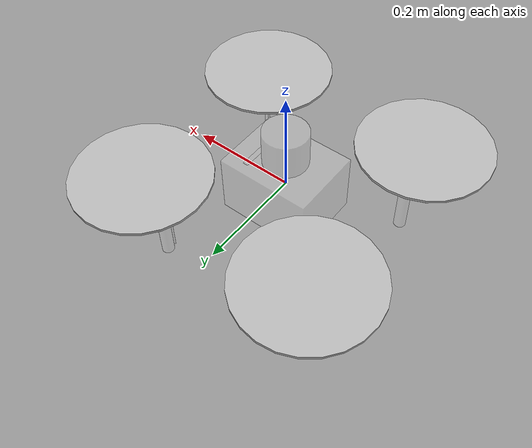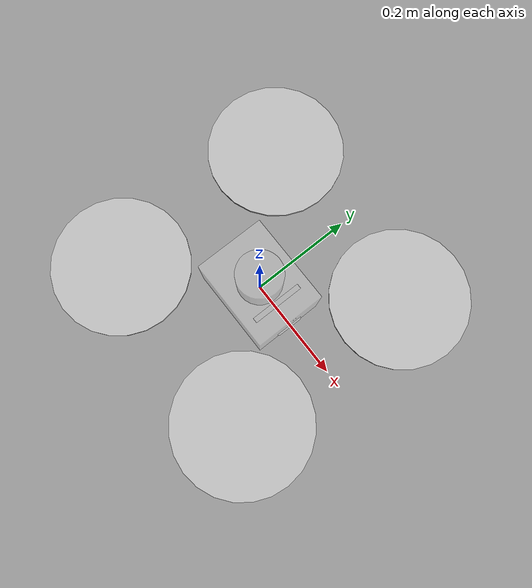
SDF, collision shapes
<?xml version="1.0"?>
<sdf version='1.6'>
  <model name='ctu_cras_norlab_x500_sensor_config_1'>
    <link name='base_link'>

      <sensor name="front_laser" type="gpu_lidar">
        <pose>0 0 0.0944 0 0 0</pose>
        <update_rate>20</update_rate>
        <lidar>
          <scan>
            <horizontal>
              <samples>1024</samples>
              <resolution>1</resolution>
              <min_angle>-3.14159</min_angle>
              <max_angle>3.14159</max_angle>
            </horizontal>
            <vertical>
              <samples>64</samples>
              <resolution>1</resolution>
              <min_angle>-0.785398163397</min_angle>
              <max_angle>0.785398163397</max_angle>
            </vertical>
          </scan>
          <range>
            <min>0.1</min>
            <max>50</max>
            <resolution>0.003</resolution>
          </range>
          <noise>
              <type>gaussian</type>
              <mean>0</mean>
              <stddev>0.03</stddev>
          </noise>
        </lidar>
      </sensor>

      <sensor name="rs_up" type="rgbd_camera">
          <pose>0.082 0 0.06 0 -1.57079632679 0</pose>
          <always_on>1</always_on>
          <update_rate>30</update_rate>
          <camera name="rs_up">
              <horizontal_fov>1.50098</horizontal_fov>
              <lens>
                  <intrinsics>
                      <!-- fx = fy = width / ( 2 * tan (hfov / 2 ) ) -->
                      <fx>343.158</fx>
                      <fy>343.158</fy>
                      <!-- cx = ( width - 1 ) / 2 -->
                      <cx>319.5</cx>
                      <!-- cy = ( height - 1 ) / 2 -->
                      <cy>179.5</cy>
                      <s>0</s>
                  </intrinsics>
              </lens>
              <distortion>
                  <k1>0.0</k1>
                  <k2>0.0</k2>
                  <k3>0.0</k3>
                  <p1>0.0</p1>
                  <p2>0.0</p2>
                  <center>0.5 0.5</center>
              </distortion>
              <image>
                  <width>640</width>
                  <height>360</height>
                  <format>R8G8B8</format>
              </image>
              <clip>
                  <near>0.01</near>
                  <far>300</far>
              </clip>
              <depth_camera>
                <clip>
                  <near>0.1</near>
                  <far>10</far>
                </clip>
              </depth_camera>
              <noise>
                  <type>gaussian</type>
                  <mean>0</mean>
                  <stddev>0.007</stddev>
              </noise>
          </camera>
      </sensor>

      <sensor name="rs_down" type="rgbd_camera">
          <pose>0.085 0 -0.046 0 1.57079632679 0</pose>
          <always_on>1</always_on>
          <update_rate>30</update_rate>
          <camera name="rs_down">
              <horizontal_fov>1.50098</horizontal_fov>
              <lens>
                  <intrinsics>
                      <!-- fx = fy = width / ( 2 * tan (hfov / 2 ) ) -->
                      <fx>343.158</fx>
                      <fy>343.158</fy>
                      <!-- cx = ( width - 1 ) / 2 -->
                      <cx>319.5</cx>
                      <!-- cy = ( height - 1 ) / 2 -->
                      <cy>179.5</cy>
                      <s>0</s>
                  </intrinsics>
              </lens>
              <distortion>
                  <k1>0.0</k1>
                  <k2>0.0</k2>
                  <k3>0.0</k3>
                  <p1>0.0</p1>
                  <p2>0.0</p2>
                  <center>0.5 0.5</center>
              </distortion>
              <image>
                  <width>640</width>
                  <height>360</height>
                  <format>R8G8B8</format>
              </image>
              <clip>
                  <near>0.01</near>
                  <far>300</far>
              </clip>
              <depth_camera>
                <clip>
                  <near>0.1</near>
                  <far>10</far>
                </clip>
              </depth_camera>
              <noise>
                  <type>gaussian</type>
                  <mean>0</mean>
                  <stddev>0.007</stddev>
              </noise>
          </camera>
      </sensor>

      <sensor name="camera_front" type="camera">
          <pose>0.107 0 0.0 0 0 0</pose>
          <always_on>1</always_on>
          <update_rate>60</update_rate>
          <camera name="camera_front">
              <horizontal_fov>1.7012</horizontal_fov>
              <lens>
                  <intrinsics>
                      <!-- fx = fy = width / ( 2 * tan (hfov / 2 ) ) -->
                      <fx>701.93225</fx>
                      <fy>701.93225</fy>
                      <!-- cx = ( width - 1 ) / 2 -->
                      <cx>799.5</cx>
                      <!-- cy = ( height - 1 ) / 2 -->
                      <cy>599.5</cy>
                      <s>0</s>
                  </intrinsics>
              </lens>
              <distortion>
                  <k1>0.0</k1>
                  <k2>0.0</k2>
                  <k3>0.0</k3>
                  <p1>0.0</p1>
                  <p2>0.0</p2>
                  <center>0.5 0.5</center>
              </distortion>
              <image>
                  <width>1600</width>
                  <height>1200</height>
                  <format>R8G8B8</format>
              </image>
              <clip>
                  <near>0.01</near>
                  <far>300</far>
              </clip>
              <noise>
                  <type>gaussian</type>
                  <mean>0</mean>
                  <stddev>0.007</stddev>
              </noise>
          </camera>
      </sensor>

      <sensor name="imu_sensor" type="imu">
          <always_on>1</always_on>
          <update_rate>250</update_rate>
              <imu>
                  <enable_orientation>0</enable_orientation>
                  <angular_velocity>
                      <x>
                          <noise type="gaussian">
                              <mean>0</mean>
                              <stddev>0.009</stddev>
                              <bias_mean>0.00075</bias_mean>
                              <bias_stddev>0.005</bias_stddev>
                              <dynamic_bias_stddev>0.00002</dynamic_bias_stddev>
                              <dynamic_bias_correlation_time>400.0</dynamic_bias_correlation_time>
                              <precision>0.00025</precision>
                          </noise>
                      </x>
                      <y>
                          <noise type="gaussian">
                              <mean>0</mean>
                              <stddev>0.009</stddev>
                              <bias_mean>0.00075</bias_mean>
                              <bias_stddev>0.005</bias_stddev>
                              <dynamic_bias_stddev>0.00002</dynamic_bias_stddev>
                              <dynamic_bias_correlation_time>400.0</dynamic_bias_correlation_time>
                              <precision>0.00025</precision>
                          </noise>
                      </y>
                      <z>
                          <noise type="gaussian">
                              <mean>0</mean>
                              <stddev>0.009</stddev>
                              <bias_mean>0.00075</bias_mean>
                              <bias_stddev>0.005</bias_stddev>
                              <dynamic_bias_stddev>0.00002</dynamic_bias_stddev>
                              <dynamic_bias_correlation_time>400.0</dynamic_bias_correlation_time>
                              <precision>0.00025</precision>
                          </noise>
                      </z>
                  </angular_velocity>
                  <linear_acceleration>
                      <x>
                          <noise type="gaussian">
                              <mean>0</mean>
                              <stddev>0.021</stddev>
                              <bias_mean>0.05</bias_mean>
                              <bias_stddev>0.0075</bias_stddev>
                              <dynamic_bias_stddev>0.000375</dynamic_bias_stddev>
                              <dynamic_bias_correlation_time>175.0</dynamic_bias_correlation_time>
                              <precision>0.005</precision>
                          </noise>
                      </x>
                      <y>
                          <noise type="gaussian">
                              <mean>0</mean>
                              <stddev>0.021</stddev>
                              <bias_mean>0.05</bias_mean>
                              <bias_stddev>0.0075</bias_stddev>
                              <dynamic_bias_stddev>0.000375</dynamic_bias_stddev>
                              <dynamic_bias_correlation_time>175.0</dynamic_bias_correlation_time>
                              <precision>0.005</precision>
                          </noise>
                      </y>
                      <z>
                          <noise type="gaussian">
                              <mean>0</mean>
                              <stddev>0.021</stddev>
                              <bias_mean>0.05</bias_mean>
                              <bias_stddev>0.0075</bias_stddev>
                              <dynamic_bias_stddev>0.000375</dynamic_bias_stddev>
                              <dynamic_bias_correlation_time>175.0</dynamic_bias_correlation_time>
                              <precision>0.005</precision>
                          </noise>
                      </z>
                  </linear_acceleration>
              </imu>
      </sensor>

      <sensor name="air_pressure" type="air_pressure">
          <always_on>1</always_on>
          <update_rate>20</update_rate>
          <air_pressure>
              <reference_altitude>0</reference_altitude>
              <noise type="gaussian">
                  <mean>0.00000008</mean>
              </noise>
          </air_pressure>
      </sensor>

      <sensor name="magnetometer" type="magnetometer">
          <always_on>1</always_on>
          <update_rate>20</update_rate>
          <magnetometer>
              <x>
                  <noise type="gaussian">
                      <mean>0.000000080</mean>
                      <bias_mean>0.000000400</bias_mean>
                  </noise>
              </x>
              <y>
                  <noise type="gaussian">
                      <mean>0.000000080</mean>
                      <bias_mean>0.000000400</bias_mean>
                  </noise>
              </y>
              <z>
                  <noise type="gaussian">
                      <mean>0.000000080</mean>
                      <bias_mean>0.000000400</bias_mean>
                  </noise>
              </z>
          </magnetometer>
      </sensor>

      <light name="light_front_left" type="spot">
        <pose>0.159099 0.152028 -0.0785 0 1.5708 2.35619</pose>
        <attenuation>
          <range>50</range>
          <linear>0</linear>
          <constant>0.1</constant>
          <quadratic>0.0025</quadratic>
        </attenuation>
        <diffuse>0.8 0.8 0.5 1</diffuse>
        <specular>0.8 0.8 0.5 1</specular>
        <spot>
          <inner_angle>2.8</inner_angle>
          <outer_angle>2.9</outer_angle>
          <falloff>1</falloff>
        </spot>
        <direction>1 0 0</direction>
      </light>

      <light name="light_front_right" type="spot">
        <pose>0.159099 -0.152028 -0.0785 -1.5708 -0 2.35619</pose>
        <attenuation>
          <range>50</range>
          <linear>0</linear>
          <constant>0.1</constant>
          <quadratic>0.0025</quadratic>
        </attenuation>
        <diffuse>0.8 0.8 0.5 1</diffuse>
        <specular>0.8 0.8 0.5 1</specular>
        <spot>
          <inner_angle>2.8</inner_angle>
          <outer_angle>2.9</outer_angle>
          <falloff>1</falloff>
        </spot>
        <direction>1 0 0</direction>
      </light>

      <light name="top_light" type="spot">
        <pose>0.05 0 0.059 0 3.14159 0</pose>
        <attenuation>
          <range>50</range>
          <linear>0</linear>
          <constant>0.1</constant>
          <quadratic>0.0025</quadratic>
        </attenuation>
        <diffuse>0.8 0.8 0.5 1</diffuse>
        <specular>0.8 0.8 0.5 1</specular>
        <spot>
          <inner_angle>2.8</inner_angle>
          <outer_angle>2.9</outer_angle>
          <falloff>1</falloff>
        </spot>
        <direction>1 0 0</direction>
      </light>

      <light name="bottom_light" type="spot">
        <pose>0.03 0 -0.05 0 0 0</pose>
        <attenuation>
          <range>50</range>
          <linear>0</linear>
          <constant>0.1</constant>
          <quadratic>0.0025</quadratic>
        </attenuation>
        <diffuse>0.8 0.8 0.5 1</diffuse>
        <specular>0.8 0.8 0.5 1</specular>
        <spot>
          <inner_angle>2.8</inner_angle>
          <outer_angle>2.9</outer_angle>
          <falloff>1</falloff>
        </spot>
        <direction>1 0 0</direction>
      </light>

      <inertial>
        <pose>0 0 0 0 -0 0</pose>
        <mass>3.3</mass>
        <inertia>
          <ixx>0.0316667</ixx>
          <ixy>0</ixy>
          <ixz>0</ixz>
          <iyy>0.0316667</iyy>
          <iyz>0</iyz>
          <izz>0.0625</izz>
        </inertia>
      </inertial>
      <collision name='base_link_inertia_collision'>
        <pose>0 0 0 0 -0 0</pose>
        <geometry>
          <box>
            <size>0.18 0.14 0.12</size>
          </box>
        </geometry>
      </collision>
      <collision name='base_link_fixed_joint_lump__bottom_light_link_collision_1'>
        <pose>0.03 0 -0.05 0 -0 0</pose>
        <geometry>
          <box>
            <size>0.01 0.1 0.003</size>
          </box>
        </geometry>
      </collision>
      <collision name='base_link_fixed_joint_lump__top_light_link_collision_2'>
        <pose>0.05 0 0.059 0 -0 0</pose>
        <geometry>
          <box>
            <size>0.01 0.1 0.003</size>
          </box>
        </geometry>
      </collision>
      <collision name='base_link_fixed_joint_lump__front_left_leg_clip_link_collision_3'>
        <pose>0.162635 0.162635 -0.0785 0 -0 0</pose>
        <geometry>
          <cylinder>
            <length>0.157</length>
            <radius>0.012</radius>
          </cylinder>
        </geometry>
      </collision>
      <collision name='base_link_fixed_joint_lump__front_left_leg_light_link_collision_4'>
        <pose>0.159099 0.152028 -0.0785 0 -0 2.35619</pose>
        <geometry>
          <box>
            <size>0.003 0.01 0.145</size>
          </box>
        </geometry>
      </collision>
      <collision name='base_link_fixed_joint_lump__front_right_leg_clip_link_collision_5'>
        <pose>0.162635 -0.162635 -0.0785 0 0 -1.5708</pose>
        <geometry>
          <cylinder>
            <length>0.157</length>
            <radius>0.012</radius>
          </cylinder>
        </geometry>
      </collision>
      <collision name='base_link_fixed_joint_lump__front_right_leg_light_link_collision_6'>
        <pose>0.159099 -0.152028 -0.0785 0 -0 0.785398</pose>
        <geometry>
          <box>
            <size>0.003 0.01 0.145</size>
          </box>
        </geometry>
      </collision>
      <collision name='base_link_fixed_joint_lump__os_sensor_link_collision_7'>
        <pose>0 0 0.0944 0 -0 1.5708</pose>
        <geometry>
          <cylinder>
            <length>0.0735</length>
            <radius>0.0425</radius>
          </cylinder>
        </geometry>
      </collision>
      <collision name='base_link_fixed_joint_lump__rear_left_leg_clip_link_collision_8'>
        <pose>-0.162635 0.162635 -0.0785 0 -0 1.5708</pose>
        <geometry>
          <cylinder>
            <length>0.157</length>
            <radius>0.012</radius>
          </cylinder>
        </geometry>
      </collision>
      <collision name='base_link_fixed_joint_lump__rear_right_leg_clip_link_collision_9'>
        <pose>-0.162635 -0.162635 -0.0785 0 0 -3.14159</pose>
        <geometry>
          <cylinder>
            <length>0.157</length>
            <radius>0.012</radius>
          </cylinder>
        </geometry>
      </collision>
      <collision name='base_link_fixed_joint_lump__rs_up_holder_link_collision_10'>
        <pose>0.085 0 0.032 -1.5708 -0 -1.5708</pose>
        <geometry>
          <mesh>
            <scale>1 1 1</scale>
            <uri>meshes/holder_rs_up.dae</uri>
          </mesh>
        </geometry>
      </collision>
      <collision name='base_link_fixed_joint_lump__sensor_holder_link_collision_11'>
        <pose>0 0 -0.022 1.5708 0 -1.5708</pose>
        <geometry>
          <mesh>
            <scale>1 1 1</scale>
            <uri>meshes/holder_rs_down_bfox.dae</uri>
          </mesh>
        </geometry>
      </collision>
      <visual name='base_link_fixed_joint_lump__rs_up_visual_visual'>
        <pose>0.082 0 0.034 -1.5708 0 1.5708</pose>
        <geometry>
          <mesh>
            <scale>1 1 1</scale>
            <uri>meshes/realsense.dae</uri>
          </mesh>
        </geometry>
      </visual>
      <visual name='base_link_fixed_joint_lump__rs_down_visual_visual_1'>
        <pose>0.085 0 -0.02 1.5708 -0 1.5708</pose>
        <geometry>
          <mesh>
            <scale>1 1 1</scale>
            <uri>meshes/realsense.dae</uri>
          </mesh>
        </geometry>
      </visual>
      <visual name='base_link_fixed_joint_lump__camera_front_visual_2'>
        <pose>0.107 0 0 0 -0 0</pose>
        <geometry>
          <mesh>
            <scale>1 1 1</scale>
            <uri>meshes/bluefox.dae</uri>
          </mesh>
        </geometry>
        <material>
          <ambient>1.0 1.0 1.0 0.2</ambient>
          <diffuse>1.0 1.0 1.0 0.2</diffuse>
          <specular>1.0 1.0 1.0 0.2</specular>
        </material>
      </visual>
      <visual name='base_link_fixed_joint_lump__back_cover_link_visual_3'>
        <pose>-0.064 0 0.03 0 -0 1.5708</pose>
        <geometry>
          <mesh>
            <scale>1 1 1</scale>
            <uri>meshes/side_mrs.dae</uri>
          </mesh>
        </geometry>
      </visual>
      <visual name='base_link_fixed_joint_lump__back_left_arm_link_visual_4'>
        <pose>0 0 0 0 -0 2.35619</pose>
        <geometry>
          <mesh>
            <scale>1 1 1</scale>
            <uri>meshes/holybro_x500_arm.dae</uri>
          </mesh>
        </geometry>
      </visual>
      <visual name='base_link_fixed_joint_lump__back_left_rotor_link_visual_5'>
        <pose>-0.177484 0.177484 0.021 0 -0 0</pose>
        <geometry>
          <mesh>
            <scale>1 1 1</scale>
            <uri>meshes/holybro_x500_motor.dae</uri>
          </mesh>
        </geometry>
      </visual>
      <visual name='base_link_fixed_joint_lump__back_right_arm_link_visual_6'>
        <pose>0 0 0 0 0 -2.35619</pose>
        <geometry>
          <mesh>
            <scale>1 1 1</scale>
            <uri>meshes/holybro_x500_arm.dae</uri>
          </mesh>
        </geometry>
      </visual>
      <visual name='base_link_fixed_joint_lump__back_right_rotor_link_visual_7'>
        <pose>-0.177484 -0.177484 0.021 0 -0 0</pose>
        <geometry>
          <mesh>
            <scale>1 1 1</scale>
            <uri>meshes/holybro_x500_motor.dae</uri>
          </mesh>
        </geometry>
      </visual>
      <visual name='base_link_fixed_joint_lump__battery_mount_left_link_visual_8'>
        <pose>-0.02 0.03 0 0 -0 0</pose>
        <geometry>
          <mesh>
            <scale>1 1 1</scale>
            <uri>meshes/holybro_x500_battery.dae</uri>
          </mesh>
        </geometry>
      </visual>
      <visual name='base_link_fixed_joint_lump__battery_mount_right_link_visual_9'>
        <pose>-0.02 -0.03 0 0 -0 0</pose>
        <geometry>
          <mesh>
            <scale>1 1 1</scale>
            <uri>meshes/holybro_x500_battery.dae</uri>
          </mesh>
        </geometry>
      </visual>
      <visual name='base_link_fixed_joint_lump__bottom_board_link_visual_10'>
        <pose>0 0 0 0 -0 0</pose>
        <geometry>
          <mesh>
            <scale>1 1 1</scale>
            <uri>meshes/holybro_x500_bottom_board.dae</uri>
          </mesh>
        </geometry>
      </visual>
      <visual name='base_link_fixed_joint_lump__bottom_light_link_visual_11'>
        <pose>0.03 0 -0.05 0 -0 0</pose>
        <geometry>
          <box>
            <size>0.01 0.1 0.003</size>
          </box>
        </geometry>
        <material>
          <ambient>1.0 1.0 1.0 1.0</ambient>
          <diffuse>1.0 1.0 1.0 1.0</diffuse>
          <specular>1.0 1.0 1.0 1.0</specular>
        </material>
      </visual>
      <visual name='base_link_fixed_joint_lump__computer_board_link_visual_12'>
        <pose>0 0 0.058 0 -0 0</pose>
        <geometry>
          <box>
            <size>0.125 0.125 0.002</size>
          </box>
        </geometry>
      </visual>
      <visual name='base_link_fixed_joint_lump__top_light_link_visual_13'>
        <pose>0.05 0 0.059 0 -0 0</pose>
        <geometry>
          <box>
            <size>0.01 0.1 0.003</size>
          </box>
        </geometry>
        <material>
          <ambient>1.0 1.0 1.0 1.0</ambient>
          <diffuse>1.0 1.0 1.0 1.0</diffuse>
          <specular>1.0 1.0 1.0 1.0</specular>
        </material>
      </visual>
      <visual name='base_link_fixed_joint_lump__front_left_arm_link_visual_14'>
        <pose>0 0 0 0 -0 0.785398</pose>
        <geometry>
          <mesh>
            <scale>1 1 1</scale>
            <uri>meshes/holybro_x500_arm.dae</uri>
          </mesh>
        </geometry>
      </visual>
      <visual name='base_link_fixed_joint_lump__front_left_leg_clip_link_visual_15'>
        <pose>0.162635 0.162635 -0.157 0 -0 0.785398</pose>
        <geometry>
          <mesh>
            <scale>1 1 1</scale>
            <uri>meshes/holybro_x500_leg.dae</uri>
          </mesh>
        </geometry>
      </visual>
      <visual name='base_link_fixed_joint_lump__front_left_leg_light_link_visual_16'>
        <pose>0.159099 0.152028 -0.0785 0 -0 2.35619</pose>
        <geometry>
          <box>
            <size>0.003 0.01 0.145</size>
          </box>
        </geometry>
        <material>
          <ambient>1.0 1.0 1.0 1.0</ambient>
          <diffuse>1.0 1.0 1.0 1.0</diffuse>
          <specular>1.0 1.0 1.0 1.0</specular>
        </material>
      </visual>
      <visual name='base_link_fixed_joint_lump__front_left_rotor_link_visual_17'>
        <pose>0.177484 0.177484 0.021 0 -0 0</pose>
        <geometry>
          <mesh>
            <scale>1 1 1</scale>
            <uri>meshes/holybro_x500_motor.dae</uri>
          </mesh>
        </geometry>
      </visual>
      <visual name='base_link_fixed_joint_lump__front_right_arm_link_visual_18'>
        <pose>0 0 0 0 0 -0.785398</pose>
        <geometry>
          <mesh>
            <scale>1 1 1</scale>
            <uri>meshes/holybro_x500_arm.dae</uri>
          </mesh>
        </geometry>
      </visual>
      <visual name='base_link_fixed_joint_lump__front_right_leg_clip_link_visual_19'>
        <pose>0.162635 -0.162635 -0.157 0 0 -0.785398</pose>
        <geometry>
          <mesh>
            <scale>1 1 1</scale>
            <uri>meshes/holybro_x500_leg.dae</uri>
          </mesh>
        </geometry>
      </visual>
      <visual name='base_link_fixed_joint_lump__front_right_leg_light_link_visual_20'>
        <pose>0.159099 -0.152028 -0.0785 0 -0 0.785398</pose>
        <geometry>
          <box>
            <size>0.003 0.01 0.145</size>
          </box>
        </geometry>
        <material>
          <ambient>1.0 1.0 1.0 1.0</ambient>
          <diffuse>1.0 1.0 1.0 1.0</diffuse>
          <specular>1.0 1.0 1.0 1.0</specular>
        </material>
      </visual>
      <visual name='base_link_fixed_joint_lump__front_right_rotor_link_visual_21'>
        <pose>0.177484 -0.177484 0.021 0 -0 0</pose>
        <geometry>
          <mesh>
            <scale>1 1 1</scale>
            <uri>meshes/holybro_x500_motor.dae</uri>
          </mesh>
        </geometry>
      </visual>
      <visual name='base_link_fixed_joint_lump__left_cover_link_visual_22'>
        <pose>0 0.064 0.03 0 0 -3.14159</pose>
        <geometry>
          <mesh>
            <scale>1 1 1</scale>
            <uri>meshes/side_ctu.dae</uri>
          </mesh>
        </geometry>
      </visual>
      <visual name='base_link_fixed_joint_lump__os_sensor_link_visual_23'>
        <pose>0 0 0.06 0 -0 1.5708</pose>
        <geometry>
          <mesh>
            <scale>1 1 1</scale>
            <uri>meshes/os1_64.dae</uri>
          </mesh>
        </geometry>
      </visual>
      <visual name='base_link_fixed_joint_lump__os_sensor_window_link_visual_24'>
        <pose>0 0 0.0944 0 -0 0</pose>
        <geometry>
          <cylinder>
            <length>0.035</length>
            <radius>0.038</radius>
          </cylinder>
        </geometry>
      </visual>
      <visual name='base_link_fixed_joint_lump__pc_mount_link_visual_25'>
        <pose>0 0 0 0 -0 0</pose>
        <geometry>
          <mesh>
            <scale>1 1 1</scale>
            <uri>meshes/holybro_x500_pc_mount.dae</uri>
          </mesh>
        </geometry>
      </visual>
      <visual name='base_link_fixed_joint_lump__pixhawk_link_visual_26'>
        <pose>0 0 0.036 0 -0 0</pose>
        <geometry>
          <mesh>
            <scale>1 1 1</scale>
            <uri>meshes/pixhawk.dae</uri>
          </mesh>
        </geometry>
      </visual>
      <visual name='base_link_fixed_joint_lump__rear_left_leg_clip_link_visual_27'>
        <pose>-0.162635 0.162635 -0.157 0 -0 2.35619</pose>
        <geometry>
          <mesh>
            <scale>1 1 1</scale>
            <uri>meshes/holybro_x500_leg.dae</uri>
          </mesh>
        </geometry>
      </visual>
      <visual name='base_link_fixed_joint_lump__rear_right_leg_clip_link_visual_28'>
        <pose>-0.162635 -0.162635 -0.157 0 0 -2.35619</pose>
        <geometry>
          <mesh>
            <scale>1 1 1</scale>
            <uri>meshes/holybro_x500_leg.dae</uri>
          </mesh>
        </geometry>
      </visual>
      <visual name='base_link_fixed_joint_lump__right_cover_link_visual_29'>
        <pose>0 -0.064 0.03 0 -0 0</pose>
        <geometry>
          <mesh>
            <scale>1 1 1</scale>
            <uri>meshes/side_ctu.dae</uri>
          </mesh>
        </geometry>
      </visual>
      <visual name='base_link_fixed_joint_lump__rs_up_holder_link_visual_30'>
        <pose>0.085 0 0.032 -1.5708 -0 -1.5708</pose>
        <geometry>
          <mesh>
            <scale>1 1 1</scale>
            <uri>meshes/holder_rs_up.dae</uri>
          </mesh>
        </geometry>
      </visual>
      <visual name='base_link_fixed_joint_lump__sensor_holder_link_visual_31'>
        <pose>0 0 -0.022 1.5708 0 -1.5708</pose>
        <geometry>
          <mesh>
            <scale>1 1 1</scale>
            <uri>meshes/holder_rs_down_bfox.dae</uri>
          </mesh>
        </geometry>
      </visual>
    </link>
    <joint name='imu_joint' type='fixed'>
      <pose>0 0 0 0 -0 0</pose>
      <parent>base_link</parent>
      <child>imu_link</child>
      <axis>
        <xyz>1 0 0</xyz>
        <limit>
          <lower>0</lower>
          <upper>0</upper>
          <effort>0</effort>
          <velocity>0</velocity>
        </limit>
        <dynamics>
          <spring_reference>0</spring_reference>
          <spring_stiffness>0</spring_stiffness>
        </dynamics>
      </axis>
    </joint>
    <link name='imu_link'>
      <pose>0 0 0 0 -0 0</pose>
      <inertial>
        <pose>0 0 0 0 -0 0</pose>
        <mass>0.015</mass>
        <inertia>
          <ixx>1e-05</ixx>
          <ixy>0</ixy>
          <ixz>0</ixz>
          <iyy>1e-05</iyy>
          <iyz>0</iyz>
          <izz>1e-05</izz>
        </inertia>
      </inertial>
    </link>
    <joint name='rotor_0_joint' type='revolute'>
      <parent>base_link</parent>
      <child>rotor_0</child>
      <axis>
        <xyz>0 0 1</xyz>
        <limit>
          <lower>-1e+16</lower>
          <upper>1e+16</upper>
        </limit>
        <dynamics>
          <spring_reference>0</spring_reference>
          <spring_stiffness>0</spring_stiffness>
        </dynamics>
      </axis>
    </joint>
    <link name='rotor_0'>
      <pose>0.177484 -0.177484 0.057 0 -0 0</pose>
      <inertial>
        <pose>0 0 0 0 -0 0</pose>
        <mass>0.005</mass>
        <inertia>
          <ixx>0.0001</ixx>
          <ixy>0</ixy>
          <ixz>0</ixz>
          <iyy>0.0001</iyy>
          <iyz>0</iyz>
          <izz>0.0001</izz>
        </inertia>
      </inertial>
      <collision name='rotor_0_collision'>
        <pose>0 0 0 0 -0 0</pose>
        <geometry>
          <cylinder>
            <length>0.005</length>
            <radius>0.127</radius>
          </cylinder>
        </geometry>
      </collision>
      <visual name='rotor_0_visual'>
        <pose>0 0 0 0 -0 0</pose>
        <geometry>
          <mesh>
            <scale>1 1 1</scale>
            <uri>meshes/holybro_x500_prop.dae</uri>
          </mesh>
        </geometry>
      </visual>
    </link>
    <joint name='rotor_1_joint' type='revolute'>
      <parent>base_link</parent>
      <child>rotor_1</child>
      <axis>
        <xyz>0 0 1</xyz>
        <limit>
          <lower>-1e+16</lower>
          <upper>1e+16</upper>
        </limit>
        <dynamics>
          <spring_reference>0</spring_reference>
          <spring_stiffness>0</spring_stiffness>
        </dynamics>
      </axis>
    </joint>
    <link name='rotor_1'>
      <pose>-0.177484 0.177484 0.057 0 -0 0</pose>
      <inertial>
        <pose>0 0 0 0 -0 0</pose>
        <mass>0.005</mass>
        <inertia>
          <ixx>0.0001</ixx>
          <ixy>0</ixy>
          <ixz>0</ixz>
          <iyy>0.0001</iyy>
          <iyz>0</iyz>
          <izz>0.0001</izz>
        </inertia>
      </inertial>
      <collision name='rotor_1_collision'>
        <pose>0 0 0 0 -0 0</pose>
        <geometry>
          <cylinder>
            <length>0.005</length>
            <radius>0.127</radius>
          </cylinder>
        </geometry>
      </collision>
      <visual name='rotor_1_visual'>
        <pose>0 0 0 0 -0 0</pose>
        <geometry>
          <mesh>
            <scale>1 1 1</scale>
            <uri>meshes/holybro_x500_prop.dae</uri>
          </mesh>
        </geometry>
      </visual>
    </link>
    <joint name='rotor_2_joint' type='revolute'>
      <parent>base_link</parent>
      <child>rotor_2</child>
      <axis>
        <xyz>0 0 1</xyz>
        <limit>
          <lower>-1e+16</lower>
          <upper>1e+16</upper>
        </limit>
        <dynamics>
          <spring_reference>0</spring_reference>
          <spring_stiffness>0</spring_stiffness>
        </dynamics>
      </axis>
    </joint>
    <link name='rotor_2'>
      <pose>0.177484 0.177484 0.057 0 -0 0</pose>
      <inertial>
        <pose>0 0 0 0 -0 0</pose>
        <mass>0.005</mass>
        <inertia>
          <ixx>0.0001</ixx>
          <ixy>0</ixy>
          <ixz>0</ixz>
          <iyy>0.0001</iyy>
          <iyz>0</iyz>
          <izz>0.0001</izz>
        </inertia>
      </inertial>
      <collision name='rotor_2_collision'>
        <pose>0 0 0 0 -0 0</pose>
        <geometry>
          <cylinder>
            <length>0.005</length>
            <radius>0.127</radius>
          </cylinder>
        </geometry>
      </collision>
      <visual name='rotor_2_visual'>
        <pose>0 0 0 0 -0 0</pose>
        <geometry>
          <mesh>
            <scale>-1 1 1</scale>
            <uri>meshes/holybro_x500_prop.dae</uri>
          </mesh>
        </geometry>
      </visual>
    </link>
    <joint name='rotor_3_joint' type='revolute'>
      <parent>base_link</parent>
      <child>rotor_3</child>
      <axis>
        <xyz>0 0 1</xyz>
        <limit>
          <lower>-1e+16</lower>
          <upper>1e+16</upper>
        </limit>
        <dynamics>
          <spring_reference>0</spring_reference>
          <spring_stiffness>0</spring_stiffness>
        </dynamics>
      </axis>
    </joint>
    <link name='rotor_3'>
      <pose>-0.177484 -0.177484 0.057 0 -0 0</pose>
      <inertial>
        <pose>0 0 0 0 -0 0</pose>
        <mass>0.005</mass>
        <inertia>
          <ixx>0.0001</ixx>
          <ixy>0</ixy>
          <ixz>0</ixz>
          <iyy>0.0001</iyy>
          <iyz>0</iyz>
          <izz>0.0001</izz>
        </inertia>
      </inertial>
      <collision name='rotor_3_collision'>
        <pose>0 0 0 0 -0 0</pose>
        <geometry>
          <cylinder>
            <length>0.005</length>
            <radius>0.127</radius>
          </cylinder>
        </geometry>
      </collision>
      <visual name='rotor_3_visual'>
        <pose>0 0 0 0 -0 0</pose>
        <geometry>
          <mesh>
            <scale>-1 1 1</scale>
            <uri>meshes/holybro_x500_prop.dae</uri>
          </mesh>
        </geometry>
      </visual>
    </link>
  </model>
</sdf>
